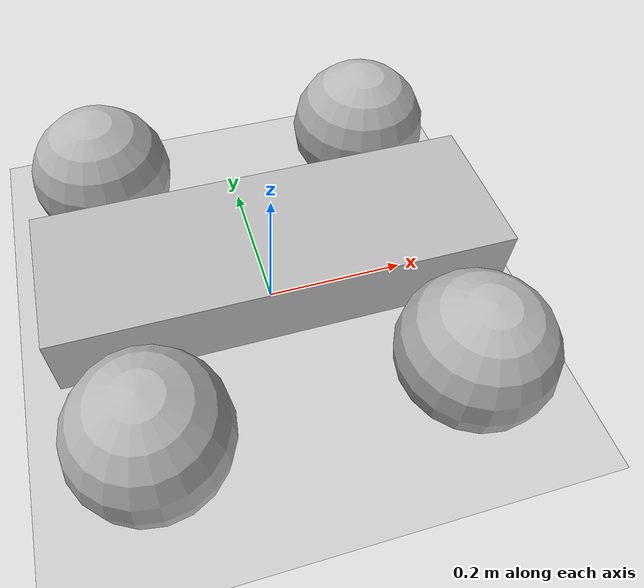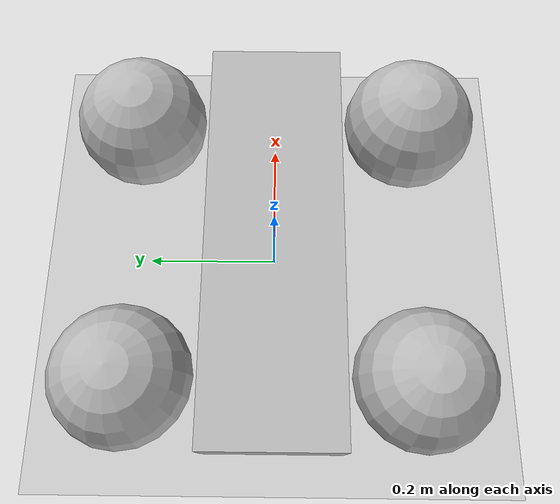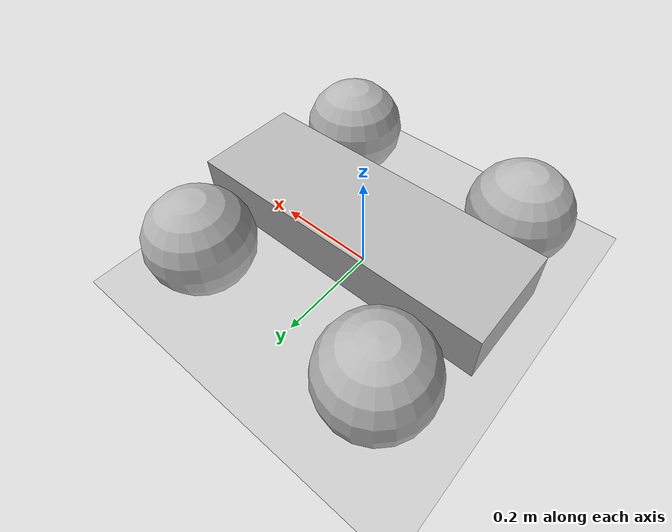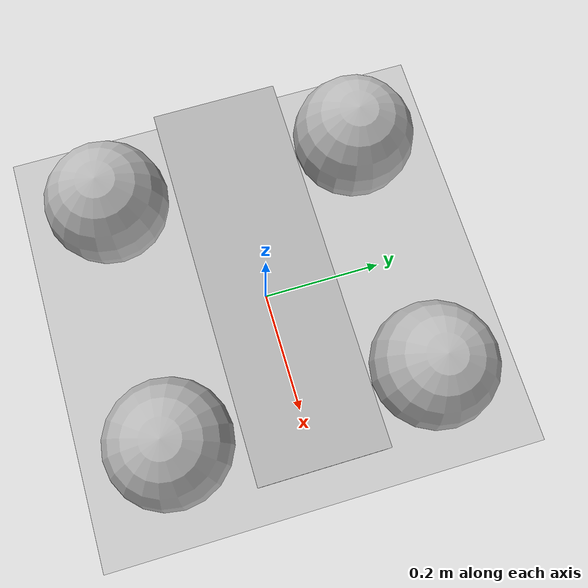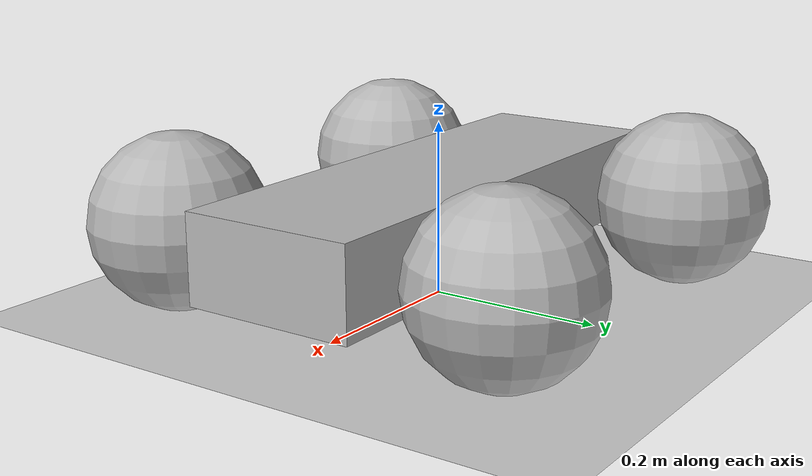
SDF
<?xml version="1.0"?>
<sdf version="1.6">
<world name="irobot_world">

<!-- Sun -->
<include>
  <uri>model://sun</uri>
</include>

<!-- Ground Plane -->
<include>
  <uri>model://ground_plane</uri>
</include>

<!-- iRobot -->
<include>
  <uri>model://irobot</uri>
</include>

</world>
</sdf>

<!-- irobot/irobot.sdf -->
<sdf version="1.6">

<!-- iRobot -->
<model name="irobot">

  <pose>0 0 0.1 0 0 0</pose>
  <static>false</static>

  <link name="chassis">
    <pose>0 0 0 0 0 0</pose>

    <inertial>
      <inertia>
        <!-- (mass / 12) * (y*y + z*z) -->
        <ixx>0.0041666666666666675</ixx>
        <ixy>0</ixy>
        <ixz>0</ixz>
        <!-- (mass / 12) * (x*x + z*z) -->
        <iyy>0.03083333333333333</iyy>
        <iyz>0</iyz>
        <!-- (mass / 12) * (y*y + x*x) -->
        <izz>0.03333333333333333</izz>
      </inertia>
    </inertial>

    <collision name="collision">
      <geometry>
        <box>
          <size>.6 .2 .1</size>
        </box>
      </geometry>
    </collision>

    <visual name="visual">
      <geometry>
        <box>
          <size>.6 .2 .1</size>
        </box>
      </geometry>
    </visual>

    <sensor type="camera" name="l_camera">
      <pose>.3 .1 .15 0 0 0</pose>
      <camera>
        <horizontal_fov>1.5708</horizontal_fov>
        <image>
          <width>320</width>
          <height>240</height>
        </image>
        <clip>
          <near>0.1</near>
          <far>100</far>
        </clip>
      </camera>
      <always_on>1</always_on>
      <update_rate>30</update_rate>
      <visualize>true</visualize>
    </sensor>

    <sensor type="camera" name="r_camera">
      <pose>.3 -.1 .15 0 0 0</pose>
      <camera>
        <horizontal_fov>1.5708</horizontal_fov>
        <image>
          <width>320</width>
          <height>240</height>
        </image>
        <clip>
          <near>0.1</near>
          <far>100</far>
        </clip>
      </camera>
      <always_on>1</always_on>
      <update_rate>30</update_rate>
      <visualize>true</visualize>
    </sensor>
  </link>

  <link name="l_front_wheel">
    <pose>.2 .21 0 0 0 0</pose>

    <inertial>
      <inertia>
        <!-- (2*mass / 5) * (r*r) -->
        <ixx>0.004000000000000001</ixx>
        <ixy>0</ixy>
        <ixz>0</ixz>
        <!-- (2*mass / 5) * (r*r) -->
        <iyy>0.004000000000000001</iyy>
        <iyz>0</iyz>
        <!-- (2*mass / 5) * (r*r) -->
        <izz>0.004000000000000001</izz>
      </inertia>
    </inertial>

    <collision name="collision">
      <geometry>
        <sphere>
          <radius>.1</radius>
        </sphere>
      </geometry>
    </collision>

    <visual name="visual">
       <geometry>
        <sphere>
          <radius>.1</radius>
        </sphere>
      </geometry>
    </visual>
  </link>

  <link name="r_front_wheel">
    <pose>.2 -.21 0 0 0 0</pose>

    <inertial>
      <inertia>
        <!-- (2*mass / 5) * (r*r) -->
        <ixx>0.004000000000000001</ixx>
        <ixy>0</ixy>
        <ixz>0</ixz>
        <!-- (2*mass / 5) * (r*r) -->
        <iyy>0.004000000000000001</iyy>
        <iyz>0</iyz>
        <!-- (2*mass / 5) * (r*r) -->
        <izz>0.004000000000000001</izz>
      </inertia>
    </inertial>

    <collision name="collision">
      <geometry>
        <sphere>
          <radius>.1</radius>
        </sphere>
      </geometry>
    </collision>

    <visual name="visual">
       <geometry>
        <sphere>
          <radius>.1</radius>
        </sphere>
      </geometry>
    </visual>
  </link>

  <link name="l_back_wheel">
    <pose>-.2 .21 0 0 0 0</pose>

    <inertial>
      <inertia>
        <!-- (2*mass / 5) * (r*r) -->
        <ixx>0.004000000000000001</ixx>
        <ixy>0</ixy>
        <ixz>0</ixz>
        <!-- (2*mass / 5) * (r*r) -->
        <iyy>0.004000000000000001</iyy>
        <iyz>0</iyz>
        <!-- (2*mass / 5) * (r*r) -->
        <izz>0.004000000000000001</izz>
      </inertia>
    </inertial>

    <collision name="collision">
      <geometry>
        <sphere>
          <radius>.1</radius>
        </sphere>
      </geometry>
    </collision>

    <visual name="visual">
       <geometry>
        <sphere>
          <radius>.1</radius>
        </sphere>
      </geometry>
    </visual>
  </link>

  <link name="r_back_wheel">
    <pose>-.2 -.21 0 0 0 0</pose>

    <inertial>
      <inertia>
        <!-- (2*mass / 5) * (r*r) -->
        <ixx>0.004000000000000001</ixx>
        <ixy>0</ixy>
        <ixz>0</ixz>
        <!-- (2*mass / 5) * (r*r) -->
        <iyy>0.004000000000000001</iyy>
        <iyz>0</iyz>
        <!-- (2*mass / 5) * (r*r) -->
        <izz>0.004000000000000001</izz>
      </inertia>
    </inertial>

    <collision name="collision">
      <geometry>
        <sphere>
          <radius>.1</radius>
        </sphere>
      </geometry>
    </collision>

    <visual name="visual">
       <geometry>
        <sphere>
          <radius>.1</radius>
        </sphere>
      </geometry>
    </visual>
  </link>

  <link name="l_front_wheel_virtual">
    <pose>.2 .21 0 0 0 0</pose>
  </link>

  <link name="r_front_wheel_virtual">
    <pose>.2 -.21 0 0 0 0</pose>
  </link>

  <link name="l_back_wheel_virtual">
    <pose>-.2 .21 0 0 0 0</pose>
  </link>

  <link name="r_back_wheel_virtual">
    <pose>-.2 -.21 0 0 0 0</pose>
  </link>

  <joint type="revolute" name="l_front_wheel_pitch">
    <pose>0 0 0 0 0 0</pose>

    <parent>chassis</parent>
    <child>l_front_wheel_virtual</child>
    <axis>
      <xyz>0 1 0</xyz>
    </axis>
  </joint>

  <joint type="revolute" name="l_front_wheel_roll">
    <pose>0 0 0 0 0 0</pose>

    <parent>l_front_wheel_virtual</parent>
    <child>l_front_wheel</child>
    <axis>
      <use_parent_model_frame>1</use_parent_model_frame>
      <xyz>1 0 0</xyz>
    </axis>
  </joint>

  <joint type="revolute" name="r_front_wheel_pitch">
    <pose>0 0 0 0 0 0</pose>

    <parent>chassis</parent>
    <child>r_front_wheel_virtual</child>
    <axis>
      <xyz>0 1 0</xyz>
    </axis>
  </joint>

  <joint type="revolute" name="r_front_wheel_roll">
    <pose>0 0 0 0 0 0</pose>

    <parent>r_front_wheel_virtual</parent>
    <child>r_front_wheel</child>
    <axis>
      <use_parent_model_frame>1</use_parent_model_frame>
      <xyz>1 0 0</xyz>
    </axis>
  </joint>

  <joint type="revolute" name="l_back_wheel_pitch">
    <pose>0 0 0 0 0 0</pose>

    <parent>chassis</parent>
    <child>l_back_wheel_virtual</child>
    <axis>
      <xyz>0 1 0</xyz>
    </axis>
  </joint>

  <joint type="revolute" name="l_back_wheel_roll">
    <pose>0 0 0 0 0 0</pose>

    <parent>l_back_wheel_virtual</parent>
    <child>l_back_wheel</child>
    <axis>
      <use_parent_model_frame>1</use_parent_model_frame>
      <xyz>1 0 0</xyz>
    </axis>
  </joint>

  <joint type="revolute" name="r_back_wheel_pitch">
    <pose>0 0 0 0 0 0</pose>

    <parent>chassis</parent>
    <child>r_back_wheel_virtual</child>
    <axis>
      <xyz>0 1 0</xyz>
    </axis>
  </joint>

  <joint type="revolute" name="r_back_wheel_roll">
    <pose>0 0 0 0 0 0</pose>

    <parent>r_back_wheel_virtual</parent>
    <child>r_back_wheel</child>
    <axis>
      <use_parent_model_frame>1</use_parent_model_frame>
      <xyz>1 0 0</xyz>
    </axis>
  </joint>

  <plugin name="IRobotPlugin" filename="libgazeboIRobotPlugin.so"/>

</model>
</sdf>
